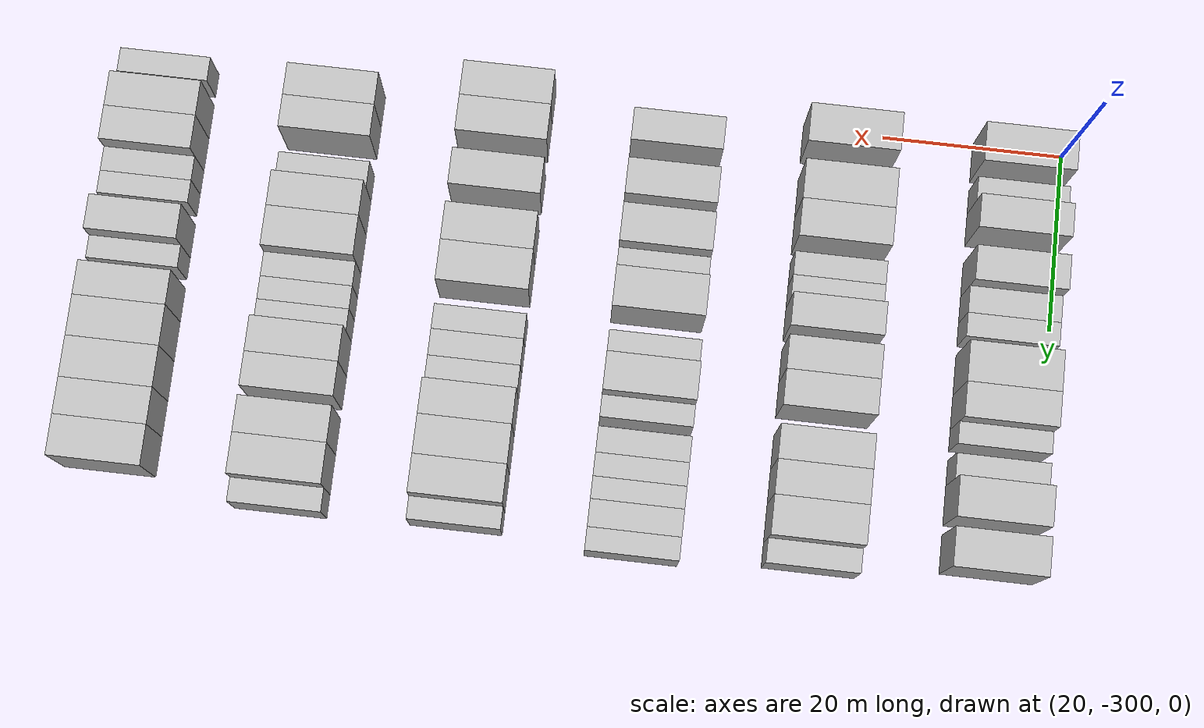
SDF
<sdf version="1.6">
 <world name="default">
  <model name="building_15">
   <static>1</static>
   <pose>25.0000 -298.1401 0 0.000000 0.000000 0.000000</pose>
   <link name="link">
    <pose>0 0 4.50 0 0 0</pose>
    <collision name="collision"><geometry><box><size>10.0000 4.3440 9.0000</size></box></geometry></collision>
    <visual name="visual">
     <cast_shadows>0</cast_shadows>
     <geometry><box><size>10.0000 4.3440 9.0000</size></box></geometry>
     <material>
      <script>
       <uri>model://HANNAS_wall/materials/scripts</uri>
       <uri>model://HANNAS_wall/materials/textures</uri>
       <name>vrc/HANNAS_wall</name>
      </script>
     </material>
    </visual>
   </link>
  </model>
  <model name="building_16">
   <static>1</static>
   <pose>25.0000 -293.6096 0 0.000000 0.000000 0.000000</pose>
   <link name="link">
    <pose>0 0 3.00 0 0 0</pose>
    <collision name="collision"><geometry><box><size>10.0000 2.7168 6.0000</size></box></geometry></collision>
    <visual name="visual">
     <cast_shadows>0</cast_shadows>
     <geometry><box><size>10.0000 2.7168 6.0000</size></box></geometry>
     <material>
      <script>
       <uri>model://HANNAS_wall/materials/scripts</uri>
       <uri>model://HANNAS_wall/materials/textures</uri>
       <name>vrc/HANNAS_wall</name>
      </script>
     </material>
    </visual>
   </link>
  </model>
  <model name="building_17">
   <static>1</static>
   <pose>25.0000 -290.3991 0 0.000000 0.000000 0.000000</pose>
   <link name="link">
    <pose>0 0 4.50 0 0 0</pose>
    <collision name="collision"><geometry><box><size>10.0000 3.7041 9.0000</size></box></geometry></collision>
    <visual name="visual">
     <cast_shadows>0</cast_shadows>
     <geometry><box><size>10.0000 3.7041 9.0000</size></box></geometry>
     <material>
      <script>
       <uri>model://HANNAS_wall/materials/scripts</uri>
       <uri>model://HANNAS_wall/materials/textures</uri>
       <name>vrc/HANNAS_wall</name>
      </script>
     </material>
    </visual>
   </link>
  </model>
  <model name="building_18">
   <static>1</static>
   <pose>25.0000 -284.6384 0 0.000000 0.000000 0.000000</pose>
   <link name="link">
    <pose>0 0 4.50 0 0 0</pose>
    <collision name="collision"><geometry><box><size>10.0000 3.8173 9.0000</size></box></geometry></collision>
    <visual name="visual">
     <cast_shadows>0</cast_shadows>
     <geometry><box><size>10.0000 3.8173 9.0000</size></box></geometry>
     <material>
      <script>
       <uri>model://HANNAS_wall/materials/scripts</uri>
       <uri>model://HANNAS_wall/materials/textures</uri>
       <name>vrc/HANNAS_wall</name>
      </script>
     </material>
    </visual>
   </link>
  </model>
  <model name="building_19">
   <static>1</static>
   <pose>25.0000 -281.2480 0 0.000000 0.000000 0.000000</pose>
   <link name="link">
    <pose>0 0 3.00 0 0 0</pose>
    <collision name="collision"><geometry><box><size>10.0000 2.9634 6.0000</size></box></geometry></collision>
    <visual name="visual">
     <cast_shadows>0</cast_shadows>
     <geometry><box><size>10.0000 2.9634 6.0000</size></box></geometry>
     <material>
      <script>
       <uri>model://HANNAS_wall/materials/scripts</uri>
       <uri>model://HANNAS_wall/materials/textures</uri>
       <name>vrc/HANNAS_wall</name>
      </script>
     </material>
    </visual>
   </link>
  </model>
  <model name="building_20">
   <static>1</static>
   <pose>25.0000 -278.4587 0 0.000000 0.000000 0.000000</pose>
   <link name="link">
    <pose>0 0 3.00 0 0 0</pose>
    <collision name="collision"><geometry><box><size>10.0000 2.6152 6.0000</size></box></geometry></collision>
    <visual name="visual">
     <cast_shadows>0</cast_shadows>
     <geometry><box><size>10.0000 2.6152 6.0000</size></box></geometry>
     <material>
      <script>
       <uri>model://HANNAS_wall/materials/scripts</uri>
       <uri>model://HANNAS_wall/materials/textures</uri>
       <name>vrc/HANNAS_wall</name>
      </script>
     </material>
    </visual>
   </link>
  </model>
  <model name="building_21">
   <static>1</static>
   <pose>25.0000 -273.9181 0 0.000000 0.000000 0.000000</pose>
   <link name="link">
    <pose>0 0 4.50 0 0 0</pose>
    <collision name="collision"><geometry><box><size>10.0000 4.4660 9.0000</size></box></geometry></collision>
    <visual name="visual">
     <cast_shadows>0</cast_shadows>
     <geometry><box><size>10.0000 4.4660 9.0000</size></box></geometry>
     <material>
      <script>
       <uri>model://HANNAS_wall/materials/scripts</uri>
       <uri>model://HANNAS_wall/materials/textures</uri>
       <name>vrc/HANNAS_wall</name>
      </script>
     </material>
    </visual>
   </link>
  </model>
  <model name="building_22">
   <static>1</static>
   <pose>25.0000 -269.7842 0 0.000000 0.000000 0.000000</pose>
   <link name="link">
    <pose>0 0 4.50 0 0 0</pose>
    <collision name="collision"><geometry><box><size>10.0000 3.8019 9.0000</size></box></geometry></collision>
    <visual name="visual">
     <cast_shadows>0</cast_shadows>
     <geometry><box><size>10.0000 3.8019 9.0000</size></box></geometry>
     <material>
      <script>
       <uri>model://HANNAS_wall/materials/scripts</uri>
       <uri>model://HANNAS_wall/materials/textures</uri>
       <name>vrc/HANNAS_wall</name>
      </script>
     </material>
    </visual>
   </link>
  </model>
  <model name="building_23">
   <static>1</static>
   <pose>25.0000 -266.6804 0 0.000000 0.000000 0.000000</pose>
   <link name="link">
    <pose>0 0 3.00 0 0 0</pose>
    <collision name="collision"><geometry><box><size>10.0000 2.4058 6.0000</size></box></geometry></collision>
    <visual name="visual">
     <cast_shadows>0</cast_shadows>
     <geometry><box><size>10.0000 2.4058 6.0000</size></box></geometry>
     <material>
      <script>
       <uri>model://HANNAS_wall/materials/scripts</uri>
       <uri>model://HANNAS_wall/materials/textures</uri>
       <name>vrc/HANNAS_wall</name>
      </script>
     </material>
    </visual>
   </link>
  </model>
  <model name="building_24">
   <static>1</static>
   <pose>25.0000 -263.0894 0 0.000000 0.000000 0.000000</pose>
   <link name="link">
    <pose>0 0 3.00 0 0 0</pose>
    <collision name="collision"><geometry><box><size>10.0000 2.7762 6.0000</size></box></geometry></collision>
    <visual name="visual">
     <cast_shadows>0</cast_shadows>
     <geometry><box><size>10.0000 2.7762 6.0000</size></box></geometry>
     <material>
      <script>
       <uri>model://HANNAS_wall/materials/scripts</uri>
       <uri>model://HANNAS_wall/materials/textures</uri>
       <name>vrc/HANNAS_wall</name>
      </script>
     </material>
    </visual>
   </link>
  </model>
  <model name="building_25">
   <static>1</static>
   <pose>25.0000 -259.5243 0 0.000000 0.000000 0.000000</pose>
   <link name="link">
    <pose>0 0 4.50 0 0 0</pose>
    <collision name="collision"><geometry><box><size>10.0000 4.3541 9.0000</size></box></geometry></collision>
    <visual name="visual">
     <cast_shadows>0</cast_shadows>
     <geometry><box><size>10.0000 4.3541 9.0000</size></box></geometry>
     <material>
      <script>
       <uri>model://HANNAS_wall/materials/scripts</uri>
       <uri>model://HANNAS_wall/materials/textures</uri>
       <name>vrc/HANNAS_wall</name>
      </script>
     </material>
    </visual>
   </link>
  </model>
  <model name="building_26">
   <static>1</static>
   <pose>25.0000 -254.2442 0 0.000000 0.000000 0.000000</pose>
   <link name="link">
    <pose>0 0 4.50 0 0 0</pose>
    <collision name="collision"><geometry><box><size>10.0000 4.2059 9.0000</size></box></geometry></collision>
    <visual name="visual">
     <cast_shadows>0</cast_shadows>
     <geometry><box><size>10.0000 4.2059 9.0000</size></box></geometry>
     <material>
      <script>
       <uri>model://HANNAS_wall/materials/scripts</uri>
       <uri>model://HANNAS_wall/materials/textures</uri>
       <name>vrc/HANNAS_wall</name>
      </script>
     </material>
    </visual>
   </link>
  </model>
  <model name="building_190">
   <static>1</static>
   <pose>44.0000 -298.1394 0 0.000000 0.000000 0.000000</pose>
   <link name="link">
    <pose>0 0 4.50 0 0 0</pose>
    <collision name="collision"><geometry><box><size>10.0000 4.2883 9.0000</size></box></geometry></collision>
    <visual name="visual">
     <cast_shadows>0</cast_shadows>
     <geometry><box><size>10.0000 4.2883 9.0000</size></box></geometry>
     <material>
      <script>
       <uri>model://HANNAS_wall/materials/scripts</uri>
       <uri>model://HANNAS_wall/materials/textures</uri>
       <name>vrc/HANNAS_wall</name>
      </script>
     </material>
    </visual>
   </link>
  </model>
  <model name="building_191">
   <static>1</static>
   <pose>44.0000 -291.7878 0 0.000000 0.000000 0.000000</pose>
   <link name="link">
    <pose>0 0 4.50 0 0 0</pose>
    <collision name="collision"><geometry><box><size>10.0000 4.4149 9.0000</size></box></geometry></collision>
    <visual name="visual">
     <cast_shadows>0</cast_shadows>
     <geometry><box><size>10.0000 4.4149 9.0000</size></box></geometry>
     <material>
      <script>
       <uri>model://HANNAS_wall/materials/scripts</uri>
       <uri>model://HANNAS_wall/materials/textures</uri>
       <name>vrc/HANNAS_wall</name>
      </script>
     </material>
    </visual>
   </link>
  </model>
  <model name="building_192">
   <static>1</static>
   <pose>44.0000 -287.4938 0 0.000000 0.000000 0.000000</pose>
   <link name="link">
    <pose>0 0 4.50 0 0 0</pose>
    <collision name="collision"><geometry><box><size>10.0000 4.1731 9.0000</size></box></geometry></collision>
    <visual name="visual">
     <cast_shadows>0</cast_shadows>
     <geometry><box><size>10.0000 4.1731 9.0000</size></box></geometry>
     <material>
      <script>
       <uri>model://HANNAS_wall/materials/scripts</uri>
       <uri>model://HANNAS_wall/materials/textures</uri>
       <name>vrc/HANNAS_wall</name>
      </script>
     </material>
    </visual>
   </link>
  </model>
  <model name="building_193">
   <static>1</static>
   <pose>44.0000 -283.0943 0 0.000000 0.000000 0.000000</pose>
   <link name="link">
    <pose>0 0 3.00 0 0 0</pose>
    <collision name="collision"><geometry><box><size>10.0000 2.6259 6.0000</size></box></geometry></collision>
    <visual name="visual">
     <cast_shadows>0</cast_shadows>
     <geometry><box><size>10.0000 2.6259 6.0000</size></box></geometry>
     <material>
      <script>
       <uri>model://HANNAS_wall/materials/scripts</uri>
       <uri>model://HANNAS_wall/materials/textures</uri>
       <name>vrc/HANNAS_wall</name>
      </script>
     </material>
    </visual>
   </link>
  </model>
  <model name="building_194">
   <static>1</static>
   <pose>44.0000 -280.4970 0 0.000000 0.000000 0.000000</pose>
   <link name="link">
    <pose>0 0 3.00 0 0 0</pose>
    <collision name="collision"><geometry><box><size>10.0000 2.5688 6.0000</size></box></geometry></collision>
    <visual name="visual">
     <cast_shadows>0</cast_shadows>
     <geometry><box><size>10.0000 2.5688 6.0000</size></box></geometry>
     <material>
      <script>
       <uri>model://HANNAS_wall/materials/scripts</uri>
       <uri>model://HANNAS_wall/materials/textures</uri>
       <name>vrc/HANNAS_wall</name>
      </script>
     </material>
    </visual>
   </link>
  </model>
  <model name="building_195">
   <static>1</static>
   <pose>44.0000 -277.3910 0 0.000000 0.000000 0.000000</pose>
   <link name="link">
    <pose>0 0 4.50 0 0 0</pose>
    <collision name="collision"><geometry><box><size>10.0000 3.6431 9.0000</size></box></geometry></collision>
    <visual name="visual">
     <cast_shadows>0</cast_shadows>
     <geometry><box><size>10.0000 3.6431 9.0000</size></box></geometry>
     <material>
      <script>
       <uri>model://HANNAS_wall/materials/scripts</uri>
       <uri>model://HANNAS_wall/materials/textures</uri>
       <name>vrc/HANNAS_wall</name>
      </script>
     </material>
    </visual>
   </link>
  </model>
  <model name="building_196">
   <static>1</static>
   <pose>44.0000 -272.7161 0 0.000000 0.000000 0.000000</pose>
   <link name="link">
    <pose>0 0 4.50 0 0 0</pose>
    <collision name="collision"><geometry><box><size>10.0000 3.7069 9.0000</size></box></geometry></collision>
    <visual name="visual">
     <cast_shadows>0</cast_shadows>
     <geometry><box><size>10.0000 3.7069 9.0000</size></box></geometry>
     <material>
      <script>
       <uri>model://HANNAS_wall/materials/scripts</uri>
       <uri>model://HANNAS_wall/materials/textures</uri>
       <name>vrc/HANNAS_wall</name>
      </script>
     </material>
    </visual>
   </link>
  </model>
  <model name="building_197">
   <static>1</static>
   <pose>44.0000 -268.9239 0 0.000000 0.000000 0.000000</pose>
   <link name="link">
    <pose>0 0 4.50 0 0 0</pose>
    <collision name="collision"><geometry><box><size>10.0000 3.8774 9.0000</size></box></geometry></collision>
    <visual name="visual">
     <cast_shadows>0</cast_shadows>
     <geometry><box><size>10.0000 3.8774 9.0000</size></box></geometry>
     <material>
      <script>
       <uri>model://HANNAS_wall/materials/scripts</uri>
       <uri>model://HANNAS_wall/materials/textures</uri>
       <name>vrc/HANNAS_wall</name>
      </script>
     </material>
    </visual>
   </link>
  </model>
  <model name="building_198">
   <static>1</static>
   <pose>44.0000 -263.1220 0 0.000000 0.000000 0.000000</pose>
   <link name="link">
    <pose>0 0 4.50 0 0 0</pose>
    <collision name="collision"><geometry><box><size>10.0000 3.7264 9.0000</size></box></geometry></collision>
    <visual name="visual">
     <cast_shadows>0</cast_shadows>
     <geometry><box><size>10.0000 3.7264 9.0000</size></box></geometry>
     <material>
      <script>
       <uri>model://HANNAS_wall/materials/scripts</uri>
       <uri>model://HANNAS_wall/materials/textures</uri>
       <name>vrc/HANNAS_wall</name>
      </script>
     </material>
    </visual>
   </link>
  </model>
  <model name="building_199">
   <static>1</static>
   <pose>44.0000 -259.3826 0 0.000000 0.000000 0.000000</pose>
   <link name="link">
    <pose>0 0 4.50 0 0 0</pose>
    <collision name="collision"><geometry><box><size>10.0000 3.7524 9.0000</size></box></geometry></collision>
    <visual name="visual">
     <cast_shadows>0</cast_shadows>
     <geometry><box><size>10.0000 3.7524 9.0000</size></box></geometry>
     <material>
      <script>
       <uri>model://HANNAS_wall/materials/scripts</uri>
       <uri>model://HANNAS_wall/materials/textures</uri>
       <name>vrc/HANNAS_wall</name>
      </script>
     </material>
    </visual>
   </link>
  </model>
  <model name="building_200">
   <static>1</static>
   <pose>44.0000 -255.3811 0 0.000000 0.000000 0.000000</pose>
   <link name="link">
    <pose>0 0 4.50 0 0 0</pose>
    <collision name="collision"><geometry><box><size>10.0000 4.2505 9.0000</size></box></geometry></collision>
    <visual name="visual">
     <cast_shadows>0</cast_shadows>
     <geometry><box><size>10.0000 4.2505 9.0000</size></box></geometry>
     <material>
      <script>
       <uri>model://HANNAS_wall/materials/scripts</uri>
       <uri>model://HANNAS_wall/materials/textures</uri>
       <name>vrc/HANNAS_wall</name>
      </script>
     </material>
    </visual>
   </link>
  </model>
  <model name="building_201">
   <static>1</static>
   <pose>44.0000 -251.9393 0 0.000000 0.000000 0.000000</pose>
   <link name="link">
    <pose>0 0 3.00 0 0 0</pose>
    <collision name="collision"><geometry><box><size>10.0000 2.6332 6.0000</size></box></geometry></collision>
    <visual name="visual">
     <cast_shadows>0</cast_shadows>
     <geometry><box><size>10.0000 2.6332 6.0000</size></box></geometry>
     <material>
      <script>
       <uri>model://HANNAS_wall/materials/scripts</uri>
       <uri>model://HANNAS_wall/materials/textures</uri>
       <name>vrc/HANNAS_wall</name>
      </script>
     </material>
    </visual>
   </link>
  </model>
  <model name="building_354">
   <static>1</static>
   <pose>63.0000 -295.7522 0 0.000000 0.000000 0.000000</pose>
   <link name="link">
    <pose>0 0 4.50 0 0 0</pose>
    <collision name="collision"><geometry><box><size>10.0000 3.6168 9.0000</size></box></geometry></collision>
    <visual name="visual">
     <cast_shadows>0</cast_shadows>
     <geometry><box><size>10.0000 3.6168 9.0000</size></box></geometry>
     <material>
      <script>
       <uri>model://HANNAS_wall/materials/scripts</uri>
       <uri>model://HANNAS_wall/materials/textures</uri>
       <name>vrc/HANNAS_wall</name>
      </script>
     </material>
    </visual>
   </link>
  </model>
  <model name="building_355">
   <static>1</static>
   <pose>63.0000 -289.9338 0 0.000000 0.000000 0.000000</pose>
   <link name="link">
    <pose>0 0 4.50 0 0 0</pose>
    <collision name="collision"><geometry><box><size>10.0000 4.0200 9.0000</size></box></geometry></collision>
    <visual name="visual">
     <cast_shadows>0</cast_shadows>
     <geometry><box><size>10.0000 4.0200 9.0000</size></box></geometry>
     <material>
      <script>
       <uri>model://HANNAS_wall/materials/scripts</uri>
       <uri>model://HANNAS_wall/materials/textures</uri>
       <name>vrc/HANNAS_wall</name>
      </script>
     </material>
    </visual>
   </link>
  </model>
  <model name="building_356">
   <static>1</static>
   <pose>63.0000 -284.7885 0 0.000000 0.000000 0.000000</pose>
   <link name="link">
    <pose>0 0 4.50 0 0 0</pose>
    <collision name="collision"><geometry><box><size>10.0000 4.2707 9.0000</size></box></geometry></collision>
    <visual name="visual">
     <cast_shadows>0</cast_shadows>
     <geometry><box><size>10.0000 4.2707 9.0000</size></box></geometry>
     <material>
      <script>
       <uri>model://HANNAS_wall/materials/scripts</uri>
       <uri>model://HANNAS_wall/materials/textures</uri>
       <name>vrc/HANNAS_wall</name>
      </script>
     </material>
    </visual>
   </link>
  </model>
  <model name="building_357">
   <static>1</static>
   <pose>63.0000 -281.3165 0 0.000000 0.000000 0.000000</pose>
   <link name="link">
    <pose>0 0 3.00 0 0 0</pose>
    <collision name="collision"><geometry><box><size>10.0000 2.6732 6.0000</size></box></geometry></collision>
    <visual name="visual">
     <cast_shadows>0</cast_shadows>
     <geometry><box><size>10.0000 2.6732 6.0000</size></box></geometry>
     <material>
      <script>
       <uri>model://HANNAS_wall/materials/scripts</uri>
       <uri>model://HANNAS_wall/materials/textures</uri>
       <name>vrc/HANNAS_wall</name>
      </script>
     </material>
    </visual>
   </link>
  </model>
  <model name="building_358">
   <static>1</static>
   <pose>63.0000 -277.7444 0 0.000000 0.000000 0.000000</pose>
   <link name="link">
    <pose>0 0 4.50 0 0 0</pose>
    <collision name="collision"><geometry><box><size>10.0000 4.4710 9.0000</size></box></geometry></collision>
    <visual name="visual">
     <cast_shadows>0</cast_shadows>
     <geometry><box><size>10.0000 4.4710 9.0000</size></box></geometry>
     <material>
      <script>
       <uri>model://HANNAS_wall/materials/scripts</uri>
       <uri>model://HANNAS_wall/materials/textures</uri>
       <name>vrc/HANNAS_wall</name>
      </script>
     </material>
    </visual>
   </link>
  </model>
  <model name="building_359">
   <static>1</static>
   <pose>63.0000 -272.0506 0 0.000000 0.000000 0.000000</pose>
   <link name="link">
    <pose>0 0 3.00 0 0 0</pose>
    <collision name="collision"><geometry><box><size>10.0000 2.9165 6.0000</size></box></geometry></collision>
    <visual name="visual">
     <cast_shadows>0</cast_shadows>
     <geometry><box><size>10.0000 2.9165 6.0000</size></box></geometry>
     <material>
      <script>
       <uri>model://HANNAS_wall/materials/scripts</uri>
       <uri>model://HANNAS_wall/materials/textures</uri>
       <name>vrc/HANNAS_wall</name>
      </script>
     </material>
    </visual>
   </link>
  </model>
  <model name="building_360">
   <static>1</static>
   <pose>63.0000 -268.5083 0 0.000000 0.000000 0.000000</pose>
   <link name="link">
    <pose>0 0 4.50 0 0 0</pose>
    <collision name="collision"><geometry><box><size>10.0000 4.1682 9.0000</size></box></geometry></collision>
    <visual name="visual">
     <cast_shadows>0</cast_shadows>
     <geometry><box><size>10.0000 4.1682 9.0000</size></box></geometry>
     <material>
      <script>
       <uri>model://HANNAS_wall/materials/scripts</uri>
       <uri>model://HANNAS_wall/materials/textures</uri>
       <name>vrc/HANNAS_wall</name>
      </script>
     </material>
    </visual>
   </link>
  </model>
  <model name="building_361">
   <static>1</static>
   <pose>63.0000 -265.2146 0 0.000000 0.000000 0.000000</pose>
   <link name="link">
    <pose>0 0 3.00 0 0 0</pose>
    <collision name="collision"><geometry><box><size>10.0000 2.4190 6.0000</size></box></geometry></collision>
    <visual name="visual">
     <cast_shadows>0</cast_shadows>
     <geometry><box><size>10.0000 2.4190 6.0000</size></box></geometry>
     <material>
      <script>
       <uri>model://HANNAS_wall/materials/scripts</uri>
       <uri>model://HANNAS_wall/materials/textures</uri>
       <name>vrc/HANNAS_wall</name>
      </script>
     </material>
    </visual>
   </link>
  </model>
  <model name="building_362">
   <static>1</static>
   <pose>63.0000 -261.5964 0 0.000000 0.000000 0.000000</pose>
   <link name="link">
    <pose>0 0 3.00 0 0 0</pose>
    <collision name="collision"><geometry><box><size>10.0000 2.8175 6.0000</size></box></geometry></collision>
    <visual name="visual">
     <cast_shadows>0</cast_shadows>
     <geometry><box><size>10.0000 2.8175 6.0000</size></box></geometry>
     <material>
      <script>
       <uri>model://HANNAS_wall/materials/scripts</uri>
       <uri>model://HANNAS_wall/materials/textures</uri>
       <name>vrc/HANNAS_wall</name>
      </script>
     </material>
    </visual>
   </link>
  </model>
  <model name="building_363">
   <static>1</static>
   <pose>63.0000 -258.9158 0 0.000000 0.000000 0.000000</pose>
   <link name="link">
    <pose>0 0 3.00 0 0 0</pose>
    <collision name="collision"><geometry><box><size>10.0000 2.5437 6.0000</size></box></geometry></collision>
    <visual name="visual">
     <cast_shadows>0</cast_shadows>
     <geometry><box><size>10.0000 2.5437 6.0000</size></box></geometry>
     <material>
      <script>
       <uri>model://HANNAS_wall/materials/scripts</uri>
       <uri>model://HANNAS_wall/materials/textures</uri>
       <name>vrc/HANNAS_wall</name>
      </script>
     </material>
    </visual>
   </link>
  </model>
  <model name="building_364">
   <static>1</static>
   <pose>63.0000 -256.4359 0 0.000000 0.000000 0.000000</pose>
   <link name="link">
    <pose>0 0 3.00 0 0 0</pose>
    <collision name="collision"><geometry><box><size>10.0000 2.4161 6.0000</size></box></geometry></collision>
    <visual name="visual">
     <cast_shadows>0</cast_shadows>
     <geometry><box><size>10.0000 2.4161 6.0000</size></box></geometry>
     <material>
      <script>
       <uri>model://HANNAS_wall/materials/scripts</uri>
       <uri>model://HANNAS_wall/materials/textures</uri>
       <name>vrc/HANNAS_wall</name>
      </script>
     </material>
    </visual>
   </link>
  </model>
  <model name="building_365">
   <static>1</static>
   <pose>63.0000 -253.7393 0 0.000000 0.000000 0.000000</pose>
   <link name="link">
    <pose>0 0 3.00 0 0 0</pose>
    <collision name="collision"><geometry><box><size>10.0000 2.9772 6.0000</size></box></geometry></collision>
    <visual name="visual">
     <cast_shadows>0</cast_shadows>
     <geometry><box><size>10.0000 2.9772 6.0000</size></box></geometry>
     <material>
      <script>
       <uri>model://HANNAS_wall/materials/scripts</uri>
       <uri>model://HANNAS_wall/materials/textures</uri>
       <name>vrc/HANNAS_wall</name>
      </script>
     </material>
    </visual>
   </link>
  </model>
  <model name="building_366">
   <static>1</static>
   <pose>63.0000 -250.9938 0 0.000000 0.000000 0.000000</pose>
   <link name="link">
    <pose>0 0 3.00 0 0 0</pose>
    <collision name="collision"><geometry><box><size>10.0000 2.5140 6.0000</size></box></geometry></collision>
    <visual name="visual">
     <cast_shadows>0</cast_shadows>
     <geometry><box><size>10.0000 2.5140 6.0000</size></box></geometry>
     <material>
      <script>
       <uri>model://HANNAS_wall/materials/scripts</uri>
       <uri>model://HANNAS_wall/materials/textures</uri>
       <name>vrc/HANNAS_wall</name>
      </script>
     </material>
    </visual>
   </link>
  </model>
  <model name="building_534">
   <static>1</static>
   <pose>82.0000 -298.8170 0 0.000000 0.000000 0.000000</pose>
   <link name="link">
    <pose>0 0 4.50 0 0 0</pose>
    <collision name="collision"><geometry><box><size>10.0000 3.9043 9.0000</size></box></geometry></collision>
    <visual name="visual">
     <cast_shadows>0</cast_shadows>
     <geometry><box><size>10.0000 3.9043 9.0000</size></box></geometry>
     <material>
      <script>
       <uri>model://HANNAS_wall/materials/scripts</uri>
       <uri>model://HANNAS_wall/materials/textures</uri>
       <name>vrc/HANNAS_wall</name>
      </script>
     </material>
    </visual>
   </link>
  </model>
  <model name="building_535">
   <static>1</static>
   <pose>82.0000 -294.8560 0 0.000000 0.000000 0.000000</pose>
   <link name="link">
    <pose>0 0 4.50 0 0 0</pose>
    <collision name="collision"><geometry><box><size>10.0000 4.0177 9.0000</size></box></geometry></collision>
    <visual name="visual">
     <cast_shadows>0</cast_shadows>
     <geometry><box><size>10.0000 4.0177 9.0000</size></box></geometry>
     <material>
      <script>
       <uri>model://HANNAS_wall/materials/scripts</uri>
       <uri>model://HANNAS_wall/materials/textures</uri>
       <name>vrc/HANNAS_wall</name>
      </script>
     </material>
    </visual>
   </link>
  </model>
  <model name="building_536">
   <static>1</static>
   <pose>82.0000 -288.8284 0 0.000000 0.000000 0.000000</pose>
   <link name="link">
    <pose>0 0 4.50 0 0 0</pose>
    <collision name="collision"><geometry><box><size>10.0000 4.0375 9.0000</size></box></geometry></collision>
    <visual name="visual">
     <cast_shadows>0</cast_shadows>
     <geometry><box><size>10.0000 4.0375 9.0000</size></box></geometry>
     <material>
      <script>
       <uri>model://HANNAS_wall/materials/scripts</uri>
       <uri>model://HANNAS_wall/materials/textures</uri>
       <name>vrc/HANNAS_wall</name>
      </script>
     </material>
    </visual>
   </link>
  </model>
  <model name="building_537">
   <static>1</static>
   <pose>82.0000 -282.7177 0 0.000000 0.000000 0.000000</pose>
   <link name="link">
    <pose>0 0 4.50 0 0 0</pose>
    <collision name="collision"><geometry><box><size>10.0000 4.1839 9.0000</size></box></geometry></collision>
    <visual name="visual">
     <cast_shadows>0</cast_shadows>
     <geometry><box><size>10.0000 4.1839 9.0000</size></box></geometry>
     <material>
      <script>
       <uri>model://HANNAS_wall/materials/scripts</uri>
       <uri>model://HANNAS_wall/materials/textures</uri>
       <name>vrc/HANNAS_wall</name>
      </script>
     </material>
    </visual>
   </link>
  </model>
  <model name="building_538">
   <static>1</static>
   <pose>82.0000 -278.4100 0 0.000000 0.000000 0.000000</pose>
   <link name="link">
    <pose>0 0 4.50 0 0 0</pose>
    <collision name="collision"><geometry><box><size>10.0000 4.4315 9.0000</size></box></geometry></collision>
    <visual name="visual">
     <cast_shadows>0</cast_shadows>
     <geometry><box><size>10.0000 4.4315 9.0000</size></box></geometry>
     <material>
      <script>
       <uri>model://HANNAS_wall/materials/scripts</uri>
       <uri>model://HANNAS_wall/materials/textures</uri>
       <name>vrc/HANNAS_wall</name>
      </script>
     </material>
    </visual>
   </link>
  </model>
  <model name="building_539">
   <static>1</static>
   <pose>82.0000 -272.8156 0 0.000000 0.000000 0.000000</pose>
   <link name="link">
    <pose>0 0 3.00 0 0 0</pose>
    <collision name="collision"><geometry><box><size>10.0000 2.7572 6.0000</size></box></geometry></collision>
    <visual name="visual">
     <cast_shadows>0</cast_shadows>
     <geometry><box><size>10.0000 2.7572 6.0000</size></box></geometry>
     <material>
      <script>
       <uri>model://HANNAS_wall/materials/scripts</uri>
       <uri>model://HANNAS_wall/materials/textures</uri>
       <name>vrc/HANNAS_wall</name>
      </script>
     </material>
    </visual>
   </link>
  </model>
  <model name="building_540">
   <static>1</static>
   <pose>82.0000 -269.9819 0 0.000000 0.000000 0.000000</pose>
   <link name="link">
    <pose>0 0 3.00 0 0 0</pose>
    <collision name="collision"><geometry><box><size>10.0000 2.9101 6.0000</size></box></geometry></collision>
    <visual name="visual">
     <cast_shadows>0</cast_shadows>
     <geometry><box><size>10.0000 2.9101 6.0000</size></box></geometry>
     <material>
      <script>
       <uri>model://HANNAS_wall/materials/scripts</uri>
       <uri>model://HANNAS_wall/materials/textures</uri>
       <name>vrc/HANNAS_wall</name>
      </script>
     </material>
    </visual>
   </link>
  </model>
  <model name="building_541">
   <static>1</static>
   <pose>82.0000 -267.0392 0 0.000000 0.000000 0.000000</pose>
   <link name="link">
    <pose>0 0 3.00 0 0 0</pose>
    <collision name="collision"><geometry><box><size>10.0000 2.9753 6.0000</size></box></geometry></collision>
    <visual name="visual">
     <cast_shadows>0</cast_shadows>
     <geometry><box><size>10.0000 2.9753 6.0000</size></box></geometry>
     <material>
      <script>
       <uri>model://HANNAS_wall/materials/scripts</uri>
       <uri>model://HANNAS_wall/materials/textures</uri>
       <name>vrc/HANNAS_wall</name>
      </script>
     </material>
    </visual>
   </link>
  </model>
  <model name="building_542">
   <static>1</static>
   <pose>82.0000 -263.6142 0 0.000000 0.000000 0.000000</pose>
   <link name="link">
    <pose>0 0 4.50 0 0 0</pose>
    <collision name="collision"><geometry><box><size>10.0000 3.8747 9.0000</size></box></geometry></collision>
    <visual name="visual">
     <cast_shadows>0</cast_shadows>
     <geometry><box><size>10.0000 3.8747 9.0000</size></box></geometry>
     <material>
      <script>
       <uri>model://HANNAS_wall/materials/scripts</uri>
       <uri>model://HANNAS_wall/materials/textures</uri>
       <name>vrc/HANNAS_wall</name>
      </script>
     </material>
    </visual>
   </link>
  </model>
  <model name="building_543">
   <static>1</static>
   <pose>82.0000 -259.5524 0 0.000000 0.000000 0.000000</pose>
   <link name="link">
    <pose>0 0 4.50 0 0 0</pose>
    <collision name="collision"><geometry><box><size>10.0000 4.2488 9.0000</size></box></geometry></collision>
    <visual name="visual">
     <cast_shadows>0</cast_shadows>
     <geometry><box><size>10.0000 4.2488 9.0000</size></box></geometry>
     <material>
      <script>
       <uri>model://HANNAS_wall/materials/scripts</uri>
       <uri>model://HANNAS_wall/materials/textures</uri>
       <name>vrc/HANNAS_wall</name>
      </script>
     </material>
    </visual>
   </link>
  </model>
  <model name="building_544">
   <static>1</static>
   <pose>82.0000 -255.3749 0 0.000000 0.000000 0.000000</pose>
   <link name="link">
    <pose>0 0 4.50 0 0 0</pose>
    <collision name="collision"><geometry><box><size>10.0000 4.1064 9.0000</size></box></geometry></collision>
    <visual name="visual">
     <cast_shadows>0</cast_shadows>
     <geometry><box><size>10.0000 4.1064 9.0000</size></box></geometry>
     <material>
      <script>
       <uri>model://HANNAS_wall/materials/scripts</uri>
       <uri>model://HANNAS_wall/materials/textures</uri>
       <name>vrc/HANNAS_wall</name>
      </script>
     </material>
    </visual>
   </link>
  </model>
  <model name="building_545">
   <static>1</static>
   <pose>82.0000 -252.1016 0 0.000000 0.000000 0.000000</pose>
   <link name="link">
    <pose>0 0 3.00 0 0 0</pose>
    <collision name="collision"><geometry><box><size>10.0000 2.4400 6.0000</size></box></geometry></collision>
    <visual name="visual">
     <cast_shadows>0</cast_shadows>
     <geometry><box><size>10.0000 2.4400 6.0000</size></box></geometry>
     <material>
      <script>
       <uri>model://HANNAS_wall/materials/scripts</uri>
       <uri>model://HANNAS_wall/materials/textures</uri>
       <name>vrc/HANNAS_wall</name>
      </script>
     </material>
    </visual>
   </link>
  </model>
  <model name="building_709">
   <static>1</static>
   <pose>101.0000 -296.4775 0 0.000000 0.000000 0.000000</pose>
   <link name="link">
    <pose>0 0 4.50 0 0 0</pose>
    <collision name="collision"><geometry><box><size>10.0000 3.6394 9.0000</size></box></geometry></collision>
    <visual name="visual">
     <cast_shadows>0</cast_shadows>
     <geometry><box><size>10.0000 3.6394 9.0000</size></box></geometry>
     <material>
      <script>
       <uri>model://HANNAS_wall/materials/scripts</uri>
       <uri>model://HANNAS_wall/materials/textures</uri>
       <name>vrc/HANNAS_wall</name>
      </script>
     </material>
    </visual>
   </link>
  </model>
  <model name="building_710">
   <static>1</static>
   <pose>101.0000 -292.8563 0 0.000000 0.000000 0.000000</pose>
   <link name="link">
    <pose>0 0 4.50 0 0 0</pose>
    <collision name="collision"><geometry><box><size>10.0000 3.6031 9.0000</size></box></geometry></collision>
    <visual name="visual">
     <cast_shadows>0</cast_shadows>
     <geometry><box><size>10.0000 3.6031 9.0000</size></box></geometry>
     <material>
      <script>
       <uri>model://HANNAS_wall/materials/scripts</uri>
       <uri>model://HANNAS_wall/materials/textures</uri>
       <name>vrc/HANNAS_wall</name>
      </script>
     </material>
    </visual>
   </link>
  </model>
  <model name="building_711">
   <static>1</static>
   <pose>101.0000 -287.5802 0 0.000000 0.000000 0.000000</pose>
   <link name="link">
    <pose>0 0 3.00 0 0 0</pose>
    <collision name="collision"><geometry><box><size>10.0000 2.9490 6.0000</size></box></geometry></collision>
    <visual name="visual">
     <cast_shadows>0</cast_shadows>
     <geometry><box><size>10.0000 2.9490 6.0000</size></box></geometry>
     <material>
      <script>
       <uri>model://HANNAS_wall/materials/scripts</uri>
       <uri>model://HANNAS_wall/materials/textures</uri>
       <name>vrc/HANNAS_wall</name>
      </script>
     </material>
    </visual>
   </link>
  </model>
  <model name="building_712">
   <static>1</static>
   <pose>101.0000 -284.1576 0 0.000000 0.000000 0.000000</pose>
   <link name="link">
    <pose>0 0 4.50 0 0 0</pose>
    <collision name="collision"><geometry><box><size>10.0000 3.8963 9.0000</size></box></geometry></collision>
    <visual name="visual">
     <cast_shadows>0</cast_shadows>
     <geometry><box><size>10.0000 3.8963 9.0000</size></box></geometry>
     <material>
      <script>
       <uri>model://HANNAS_wall/materials/scripts</uri>
       <uri>model://HANNAS_wall/materials/textures</uri>
       <name>vrc/HANNAS_wall</name>
      </script>
     </material>
    </visual>
   </link>
  </model>
  <model name="building_713">
   <static>1</static>
   <pose>101.0000 -279.9964 0 0.000000 0.000000 0.000000</pose>
   <link name="link">
    <pose>0 0 4.50 0 0 0</pose>
    <collision name="collision"><geometry><box><size>10.0000 4.4260 9.0000</size></box></geometry></collision>
    <visual name="visual">
     <cast_shadows>0</cast_shadows>
     <geometry><box><size>10.0000 4.4260 9.0000</size></box></geometry>
     <material>
      <script>
       <uri>model://HANNAS_wall/materials/scripts</uri>
       <uri>model://HANNAS_wall/materials/textures</uri>
       <name>vrc/HANNAS_wall</name>
      </script>
     </material>
    </visual>
   </link>
  </model>
  <model name="building_714">
   <static>1</static>
   <pose>101.0000 -276.4278 0 0.000000 0.000000 0.000000</pose>
   <link name="link">
    <pose>0 0 3.00 0 0 0</pose>
    <collision name="collision"><geometry><box><size>10.0000 2.7112 6.0000</size></box></geometry></collision>
    <visual name="visual">
     <cast_shadows>0</cast_shadows>
     <geometry><box><size>10.0000 2.7112 6.0000</size></box></geometry>
     <material>
      <script>
       <uri>model://HANNAS_wall/materials/scripts</uri>
       <uri>model://HANNAS_wall/materials/textures</uri>
       <name>vrc/HANNAS_wall</name>
      </script>
     </material>
    </visual>
   </link>
  </model>
  <model name="building_715">
   <static>1</static>
   <pose>101.0000 -273.7965 0 0.000000 0.000000 0.000000</pose>
   <link name="link">
    <pose>0 0 3.00 0 0 0</pose>
    <collision name="collision"><geometry><box><size>10.0000 2.5515 6.0000</size></box></geometry></collision>
    <visual name="visual">
     <cast_shadows>0</cast_shadows>
     <geometry><box><size>10.0000 2.5515 6.0000</size></box></geometry>
     <material>
      <script>
       <uri>model://HANNAS_wall/materials/scripts</uri>
       <uri>model://HANNAS_wall/materials/textures</uri>
       <name>vrc/HANNAS_wall</name>
      </script>
     </material>
    </visual>
   </link>
  </model>
  <model name="building_716">
   <static>1</static>
   <pose>101.0000 -271.3085 0 0.000000 0.000000 0.000000</pose>
   <link name="link">
    <pose>0 0 3.00 0 0 0</pose>
    <collision name="collision"><geometry><box><size>10.0000 2.4245 6.0000</size></box></geometry></collision>
    <visual name="visual">
     <cast_shadows>0</cast_shadows>
     <geometry><box><size>10.0000 2.4245 6.0000</size></box></geometry>
     <material>
      <script>
       <uri>model://HANNAS_wall/materials/scripts</uri>
       <uri>model://HANNAS_wall/materials/textures</uri>
       <name>vrc/HANNAS_wall</name>
      </script>
     </material>
    </visual>
   </link>
  </model>
  <model name="building_717">
   <static>1</static>
   <pose>101.0000 -268.1482 0 0.000000 0.000000 0.000000</pose>
   <link name="link">
    <pose>0 0 4.50 0 0 0</pose>
    <collision name="collision"><geometry><box><size>10.0000 3.8960 9.0000</size></box></geometry></collision>
    <visual name="visual">
     <cast_shadows>0</cast_shadows>
     <geometry><box><size>10.0000 3.8960 9.0000</size></box></geometry>
     <material>
      <script>
       <uri>model://HANNAS_wall/materials/scripts</uri>
       <uri>model://HANNAS_wall/materials/textures</uri>
       <name>vrc/HANNAS_wall</name>
      </script>
     </material>
    </visual>
   </link>
  </model>
  <model name="building_718">
   <static>1</static>
   <pose>101.0000 -264.3383 0 0.000000 0.000000 0.000000</pose>
   <link name="link">
    <pose>0 0 4.50 0 0 0</pose>
    <collision name="collision"><geometry><box><size>10.0000 3.7236 9.0000</size></box></geometry></collision>
    <visual name="visual">
     <cast_shadows>0</cast_shadows>
     <geometry><box><size>10.0000 3.7236 9.0000</size></box></geometry>
     <material>
      <script>
       <uri>model://HANNAS_wall/materials/scripts</uri>
       <uri>model://HANNAS_wall/materials/textures</uri>
       <name>vrc/HANNAS_wall</name>
      </script>
     </material>
    </visual>
   </link>
  </model>
  <model name="building_719">
   <static>1</static>
   <pose>101.0000 -259.4973 0 0.000000 0.000000 0.000000</pose>
   <link name="link">
    <pose>0 0 4.50 0 0 0</pose>
    <collision name="collision"><geometry><box><size>10.0000 3.9583 9.0000</size></box></geometry></collision>
    <visual name="visual">
     <cast_shadows>0</cast_shadows>
     <geometry><box><size>10.0000 3.9583 9.0000</size></box></geometry>
     <material>
      <script>
       <uri>model://HANNAS_wall/materials/scripts</uri>
       <uri>model://HANNAS_wall/materials/textures</uri>
       <name>vrc/HANNAS_wall</name>
      </script>
     </material>
    </visual>
   </link>
  </model>
  <model name="building_720">
   <static>1</static>
   <pose>101.0000 -255.3224 0 0.000000 0.000000 0.000000</pose>
   <link name="link">
    <pose>0 0 4.50 0 0 0</pose>
    <collision name="collision"><geometry><box><size>10.0000 4.3916 9.0000</size></box></geometry></collision>
    <visual name="visual">
     <cast_shadows>0</cast_shadows>
     <geometry><box><size>10.0000 4.3916 9.0000</size></box></geometry>
     <material>
      <script>
       <uri>model://HANNAS_wall/materials/scripts</uri>
       <uri>model://HANNAS_wall/materials/textures</uri>
       <name>vrc/HANNAS_wall</name>
      </script>
     </material>
    </visual>
   </link>
  </model>
  <model name="building_721">
   <static>1</static>
   <pose>101.0000 -251.8318 0 0.000000 0.000000 0.000000</pose>
   <link name="link">
    <pose>0 0 3.00 0 0 0</pose>
    <collision name="collision"><geometry><box><size>10.0000 2.5897 6.0000</size></box></geometry></collision>
    <visual name="visual">
     <cast_shadows>0</cast_shadows>
     <geometry><box><size>10.0000 2.5897 6.0000</size></box></geometry>
     <material>
      <script>
       <uri>model://HANNAS_wall/materials/scripts</uri>
       <uri>model://HANNAS_wall/materials/textures</uri>
       <name>vrc/HANNAS_wall</name>
      </script>
     </material>
    </visual>
   </link>
  </model>
  <model name="building_877">
   <static>1</static>
   <pose>120.0000 -297.5048 0 0.000000 0.000000 0.000000</pose>
   <link name="link">
    <pose>0 0 3.00 0 0 0</pose>
    <collision name="collision"><geometry><box><size>10.0000 2.6983 6.0000</size></box></geometry></collision>
    <visual name="visual">
     <cast_shadows>0</cast_shadows>
     <geometry><box><size>10.0000 2.6983 6.0000</size></box></geometry>
     <material>
      <script>
       <uri>model://HANNAS_wall/materials/scripts</uri>
       <uri>model://HANNAS_wall/materials/textures</uri>
       <name>vrc/HANNAS_wall</name>
      </script>
     </material>
    </visual>
   </link>
  </model>
  <model name="building_878">
   <static>1</static>
   <pose>120.0000 -293.1986 0 0.000000 0.000000 0.000000</pose>
   <link name="link">
    <pose>0 0 4.50 0 0 0</pose>
    <collision name="collision"><geometry><box><size>10.0000 3.9140 9.0000</size></box></geometry></collision>
    <visual name="visual">
     <cast_shadows>0</cast_shadows>
     <geometry><box><size>10.0000 3.9140 9.0000</size></box></geometry>
     <material>
      <script>
       <uri>model://HANNAS_wall/materials/scripts</uri>
       <uri>model://HANNAS_wall/materials/textures</uri>
       <name>vrc/HANNAS_wall</name>
      </script>
     </material>
    </visual>
   </link>
  </model>
  <model name="building_879">
   <static>1</static>
   <pose>120.0000 -289.3591 0 0.000000 0.000000 0.000000</pose>
   <link name="link">
    <pose>0 0 4.50 0 0 0</pose>
    <collision name="collision"><geometry><box><size>10.0000 3.7651 9.0000</size></box></geometry></collision>
    <visual name="visual">
     <cast_shadows>0</cast_shadows>
     <geometry><box><size>10.0000 3.7651 9.0000</size></box></geometry>
     <material>
      <script>
       <uri>model://HANNAS_wall/materials/scripts</uri>
       <uri>model://HANNAS_wall/materials/textures</uri>
       <name>vrc/HANNAS_wall</name>
      </script>
     </material>
    </visual>
   </link>
  </model>
  <model name="building_880">
   <static>1</static>
   <pose>120.0000 -286.1134 0 0.000000 0.000000 0.000000</pose>
   <link name="link">
    <pose>0 0 3.00 0 0 0</pose>
    <collision name="collision"><geometry><box><size>10.0000 2.7262 6.0000</size></box></geometry></collision>
    <visual name="visual">
     <cast_shadows>0</cast_shadows>
     <geometry><box><size>10.0000 2.7262 6.0000</size></box></geometry>
     <material>
      <script>
       <uri>model://HANNAS_wall/materials/scripts</uri>
       <uri>model://HANNAS_wall/materials/textures</uri>
       <name>vrc/HANNAS_wall</name>
      </script>
     </material>
    </visual>
   </link>
  </model>
  <model name="building_881">
   <static>1</static>
   <pose>120.0000 -283.4965 0 0.000000 0.000000 0.000000</pose>
   <link name="link">
    <pose>0 0 3.00 0 0 0</pose>
    <collision name="collision"><geometry><box><size>10.0000 2.5077 6.0000</size></box></geometry></collision>
    <visual name="visual">
     <cast_shadows>0</cast_shadows>
     <geometry><box><size>10.0000 2.5077 6.0000</size></box></geometry>
     <material>
      <script>
       <uri>model://HANNAS_wall/materials/scripts</uri>
       <uri>model://HANNAS_wall/materials/textures</uri>
       <name>vrc/HANNAS_wall</name>
      </script>
     </material>
    </visual>
   </link>
  </model>
  <model name="building_882">
   <static>1</static>
   <pose>120.0000 -279.3446 0 0.000000 0.000000 0.000000</pose>
   <link name="link">
    <pose>0 0 4.50 0 0 0</pose>
    <collision name="collision"><geometry><box><size>10.0000 3.7961 9.0000</size></box></geometry></collision>
    <visual name="visual">
     <cast_shadows>0</cast_shadows>
     <geometry><box><size>10.0000 3.7961 9.0000</size></box></geometry>
     <material>
      <script>
       <uri>model://HANNAS_wall/materials/scripts</uri>
       <uri>model://HANNAS_wall/materials/textures</uri>
       <name>vrc/HANNAS_wall</name>
      </script>
     </material>
    </visual>
   </link>
  </model>
  <model name="building_883">
   <static>1</static>
   <pose>120.0000 -276.1953 0 0.000000 0.000000 0.000000</pose>
   <link name="link">
    <pose>0 0 3.00 0 0 0</pose>
    <collision name="collision"><geometry><box><size>10.0000 2.5025 6.0000</size></box></geometry></collision>
    <visual name="visual">
     <cast_shadows>0</cast_shadows>
     <geometry><box><size>10.0000 2.5025 6.0000</size></box></geometry>
     <material>
      <script>
       <uri>model://HANNAS_wall/materials/scripts</uri>
       <uri>model://HANNAS_wall/materials/textures</uri>
       <name>vrc/HANNAS_wall</name>
      </script>
     </material>
    </visual>
   </link>
  </model>
  <model name="building_884">
   <static>1</static>
   <pose>120.0000 -272.0564 0 0.000000 0.000000 0.000000</pose>
   <link name="link">
    <pose>0 0 4.50 0 0 0</pose>
    <collision name="collision"><geometry><box><size>10.0000 3.7754 9.0000</size></box></geometry></collision>
    <visual name="visual">
     <cast_shadows>0</cast_shadows>
     <geometry><box><size>10.0000 3.7754 9.0000</size></box></geometry>
     <material>
      <script>
       <uri>model://HANNAS_wall/materials/scripts</uri>
       <uri>model://HANNAS_wall/materials/textures</uri>
       <name>vrc/HANNAS_wall</name>
      </script>
     </material>
    </visual>
   </link>
  </model>
  <model name="building_885">
   <static>1</static>
   <pose>120.0000 -267.9473 0 0.000000 0.000000 0.000000</pose>
   <link name="link">
    <pose>0 0 4.50 0 0 0</pose>
    <collision name="collision"><geometry><box><size>10.0000 4.4429 9.0000</size></box></geometry></collision>
    <visual name="visual">
     <cast_shadows>0</cast_shadows>
     <geometry><box><size>10.0000 4.4429 9.0000</size></box></geometry>
     <material>
      <script>
       <uri>model://HANNAS_wall/materials/scripts</uri>
       <uri>model://HANNAS_wall/materials/textures</uri>
       <name>vrc/HANNAS_wall</name>
      </script>
     </material>
    </visual>
   </link>
  </model>
  <model name="building_886">
   <static>1</static>
   <pose>120.0000 -263.4885 0 0.000000 0.000000 0.000000</pose>
   <link name="link">
    <pose>0 0 4.50 0 0 0</pose>
    <collision name="collision"><geometry><box><size>10.0000 4.4746 9.0000</size></box></geometry></collision>
    <visual name="visual">
     <cast_shadows>0</cast_shadows>
     <geometry><box><size>10.0000 4.4746 9.0000</size></box></geometry>
     <material>
      <script>
       <uri>model://HANNAS_wall/materials/scripts</uri>
       <uri>model://HANNAS_wall/materials/textures</uri>
       <name>vrc/HANNAS_wall</name>
      </script>
     </material>
    </visual>
   </link>
  </model>
  <model name="building_887">
   <static>1</static>
   <pose>120.0000 -259.2600 0 0.000000 0.000000 0.000000</pose>
   <link name="link">
    <pose>0 0 4.50 0 0 0</pose>
    <collision name="collision"><geometry><box><size>10.0000 3.9826 9.0000</size></box></geometry></collision>
    <visual name="visual">
     <cast_shadows>0</cast_shadows>
     <geometry><box><size>10.0000 3.9826 9.0000</size></box></geometry>
     <material>
      <script>
       <uri>model://HANNAS_wall/materials/scripts</uri>
       <uri>model://HANNAS_wall/materials/textures</uri>
       <name>vrc/HANNAS_wall</name>
      </script>
     </material>
    </visual>
   </link>
  </model>
  <model name="building_888">
   <static>1</static>
   <pose>120.0000 -255.0727 0 0.000000 0.000000 0.000000</pose>
   <link name="link">
    <pose>0 0 4.50 0 0 0</pose>
    <collision name="collision"><geometry><box><size>10.0000 4.3920 9.0000</size></box></geometry></collision>
    <visual name="visual">
     <cast_shadows>0</cast_shadows>
     <geometry><box><size>10.0000 4.3920 9.0000</size></box></geometry>
     <material>
      <script>
       <uri>model://HANNAS_wall/materials/scripts</uri>
       <uri>model://HANNAS_wall/materials/textures</uri>
       <name>vrc/HANNAS_wall</name>
      </script>
     </material>
    </visual>
   </link>
  </model>
 </world>
</sdf>
